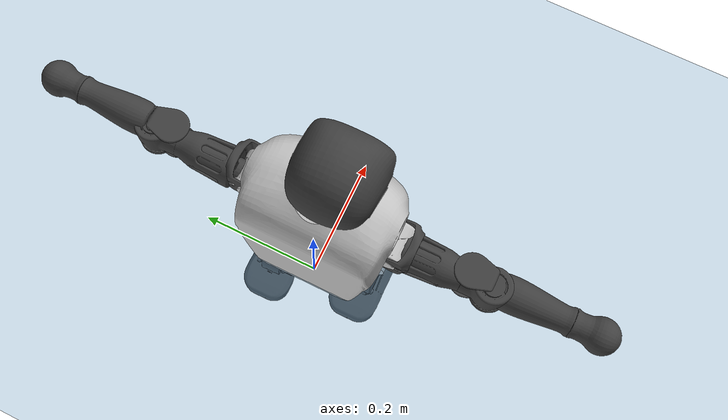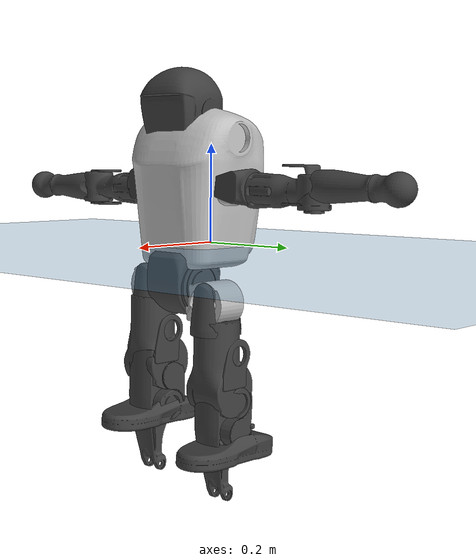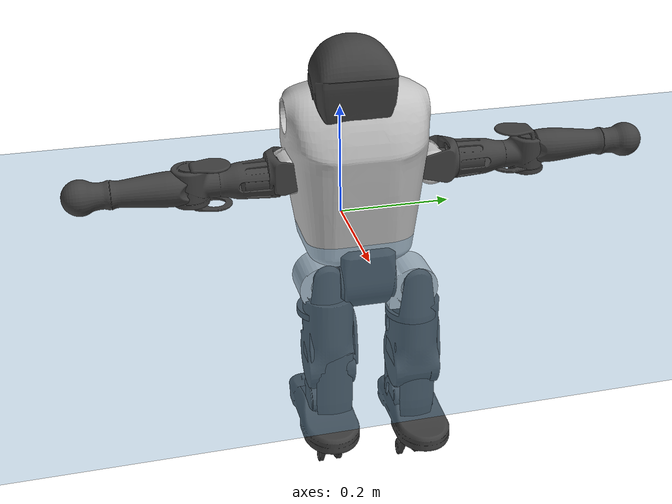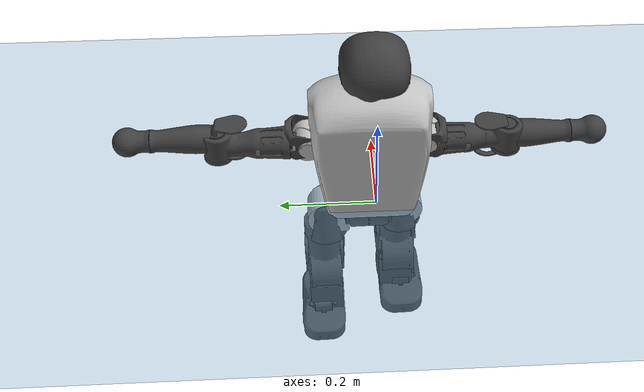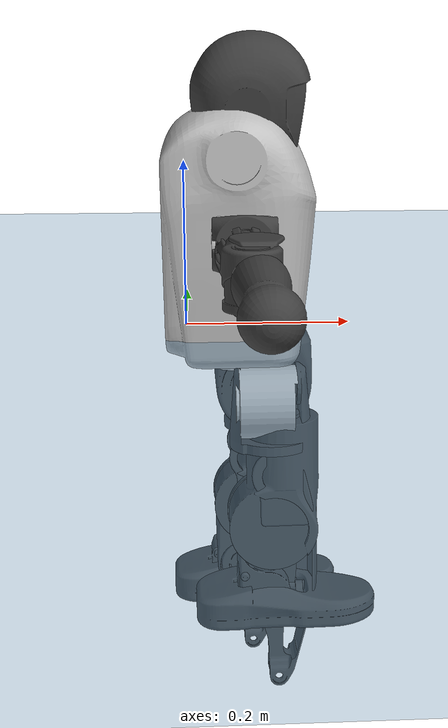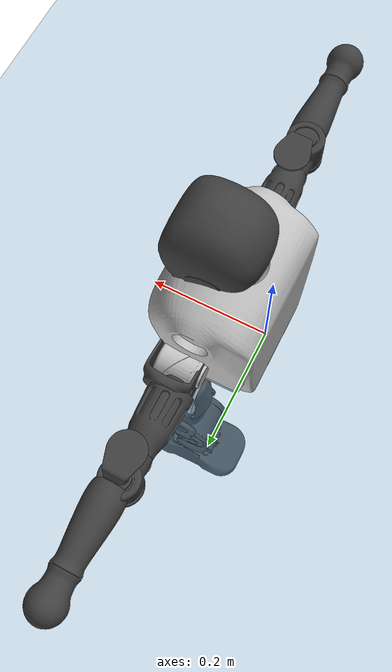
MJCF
<mujoco model="T1">
  <compiler angle="radian" assetdir="assets" balanceinertia="true" inertiafromgeom="false"/>

  <option timestep="0.005" density="1.2" viscosity="2e-05"/>

  <size nkey="1"/>

  <visual>
    <quality shadowsize="8192"/>
    <map shadowclip="0.5"/>
  </visual>

  <default>
    <default class="/">
      <joint armature="0.01" damping="0.01" frictionloss="0.1"/>
      <geom contype="0" conaffinity="0" group="1" solref="-1000 -80"/>
      <site size="0.01 0.005 0.005" group="5"/>
      <general forcelimited="true" biastype="affine" gainprm="25" biasprm="0 -25 -0.6"/>
      <default class="t1">
        <geom rgba="0.25 0.25 0.25 1"/>
        <default class="visual">
          <geom type="mesh" group="2"/>
        </default>
        <default class="collision">
          <geom group="3"/>
        </default>
        <default class="foot">
          <geom size="0.1115 0.05 0.015" type="box" condim="6" group="4" priority="1" solimp="0.015 1 0.015"/>
        </default>
        <default class="reward_collision_sphere">
          <geom group="5" rgba="1 0 0 1"/>
        </default>
      </default>
    </default>
  </default>

  <asset>
    <texture type="skybox" colorspace="auto" name="//unnamed_texture_0" builtin="gradient" rgb1="0.95 0.95 0.95" rgb2="0.95 0.95 0.95" width="100" height="600"/>
    <texture type="2d" colorspace="auto" name="texplane" builtin="checker" rgb1="0.345 0.575 0.748" rgb2="0.345 0.575 0.748" markrgb="1 1 1" width="512" height="512"/>
    <material name="MatPlane" class="/" texture="texplane" texuniform="true" texrepeat="2 2" specular="0.9"/>
    <mesh name="Trunk" class="/" file="Trunk.stl"/>
    <mesh name="H1" class="/" file="H1.stl"/>
    <mesh name="H2" class="/" file="H2.stl"/>
    <mesh name="AL1" class="/" file="AL1.stl"/>
    <mesh name="AL2" class="/" file="AL2.stl"/>
    <mesh name="AL3" class="/" file="AL3.stl"/>
    <mesh name="left_hand_link" class="/" file="left_hand_link.stl"/>
    <mesh name="AR1" class="/" file="AR1.stl"/>
    <mesh name="AR2" class="/" file="AR2.stl"/>
    <mesh name="AR3" class="/" file="AR3.stl"/>
    <mesh name="right_hand_link" class="/" file="right_hand_link.stl"/>
    <mesh name="Waist" class="/" file="Waist.stl"/>
    <mesh name="Hip_Pitch_Left" class="/" file="Hip_Pitch_Left.stl"/>
    <mesh name="Hip_Roll_Left" class="/" file="Hip_Roll_Left.stl"/>
    <mesh name="Hip_Yaw_Left" class="/" file="Hip_Yaw_Left.stl"/>
    <mesh name="Shank_Left" class="/" file="Shank_Left.stl"/>
    <mesh name="Ankle_Cross_Left" class="/" file="Ankle_Cross_Left.stl"/>
    <mesh name="left_foot_link" class="/" file="left_foot_link.stl"/>
    <mesh name="Hip_Pitch_Right" class="/" file="Hip_Pitch_Right.stl"/>
    <mesh name="Hip_Roll_Right" class="/" file="Hip_Roll_Right.stl"/>
    <mesh name="Hip_Yaw_Right" class="/" file="Hip_Yaw_Right.stl"/>
    <mesh name="Shank_Right" class="/" file="Shank_Right.stl"/>
    <mesh name="Ankle_Cross_Right" class="/" file="Ankle_Cross_Right.stl"/>
    <mesh name="right_foot_link" class="/" file="right_foot_link.stl"/>
  </asset>

  <worldbody>
    <geom name="floor" class="/" size="100 100 0.125" type="plane" group="0" material="MatPlane"/>
    <light name="toplight_shadow" class="/" pos="0 0 5" dir="0.0990148 0.0990148 -0.990148" type="directional" ambient="0.04 0.04 0.04" diffuse="0.55 0.55 0.55" specular="0.12 0.12 0.12"/>
    <light name="toplight_fill" class="/" pos="0 0 5" dir="0.0990148 0.0990148 -0.990148" type="directional" castshadow="false" ambient="0.04 0.04 0.04" diffuse="0.3 0.3 0.3" specular="0.08 0.08 0.08"/>
    <body name="trunk" childclass="t1" pos="0.00384777 0.00971918 -0.00802825" quat="0.999987 -0.00410252 -0.00295852 -0.00043092">
      <inertial pos="0.0649064 -0.00305324 0.0538595" quat="0.999957 -0.00314074 -0.00636697 -0.00594635" mass="6.78109" diaginertia="0.202845 0.0172533 0.00197356"/>
      <joint name="//unnamed_joint_0" type="free" armature="0" damping="0" frictionloss="0"/>
      <geom name="//unnamed_geom_1" class="visual" rgba="0.76 0.76 0.76 1" mesh="Trunk"/>
      <geom name="//unnamed_geom_2" class="collision" size="0.0630682 0.0840909 0.126136" pos="0.0734477 0 0.0655259" type="box"/>
      <geom name="//unnamed_geom_3" class="reward_collision_sphere" size="0.0967045" pos="0.0734477 0 0.0546049"/>
      <geom name="//unnamed_geom_4" class="reward_collision_sphere" size="0.0126136" pos="0.0734477 0.0639666 0"/>
      <geom name="//unnamed_geom_5" class="reward_collision_sphere" size="0.0126136" pos="0.0734477 -0.0639666 0"/>
      <geom name="//unnamed_geom_6" class="reward_collision_sphere" size="0.0126136" pos="0.0734477 0.0805226 0.0982889"/>
      <geom name="//unnamed_geom_7" class="reward_collision_sphere" size="0.0126136" pos="0.0734477 -0.0805226 0.0982889"/>
      <site name="imu" pos="-0.0401485 0.0116181 -0.0104424" size="0.00840909"/>
      <camera name="track" pos="0 -1.5051 0" quat="0.707107 0.707107 0 0" mode="trackcom"/>
      <camera name="ego_camera" pos="0.149344 0 0.229341" quat="-0.5 -0.5 0.5 0.5"/>
      <body name="H1" pos="0.0663374 -0.0102965 0.140548" quat="1 -8.28153e-05 0.000168387 -3.17067e-05">
        <inertial pos="0.00798419 -0.00527346 0.0232217" quat="0.784946 0.0283098 -0.0329778 0.618038" mass="0.285657" diaginertia="0.000710595 5.26389e-05 7.86645e-06"/>
        <joint name="AAHead_yaw" pos="0 0 0" axis="0.00586396 0.00111573 0.999982" range="-1.48318 1.74297" armature="0.0124132" damping="0.0070025" frictionloss="0.0301183"/>
        <geom name="//unnamed_geom_8" class="visual" mesh="H1"/>
        <body name="H2" pos="-0.00113721 -0.000157996 0.0271526" quat="1 0.000295732 -0.000595741 -0.000210403">
          <inertial pos="0.0076231 -0.00158318 0.0534846" quat="0.98655 0.108994 -0.0947545 -0.0765607" mass="0.418397" diaginertia="0.00666192 0.000494496 8.08388e-05"/>
          <joint name="Head_pitch" pos="0 0 0" axis="0.0015888 -0.999998 0.000806557" range="-1.24196 0.362595" armature="0.0135709" damping="0" frictionloss="0.0930803"/>
          <geom name="//unnamed_geom_9" class="visual" mesh="H2"/>
          <geom name="//unnamed_geom_10" class="collision" size="0.0672727" pos="0.0122413 0 0.0600654"/>
          <geom name="//unnamed_geom_11" class="reward_collision_sphere" size="0.0756818" pos="0.0244826 0 0.0546049"/>
        </body>
      </body>
      <body name="AL1" pos="0.0716533 0.0795392 0.121246" quat="1 -0.000101271 -0.000140612 -0.000329286">
        <inertial pos="0.00467305 0.0327068 -0.0021702" quat="0.503966 0.485258 -0.549767 0.456398" mass="0.312945" diaginertia="0.00376195 0.000286372 1.22961e-05"/>
        <joint name="Left_Shoulder_Pitch" pos="0 0 0" axis="0.0301431 0.999533 0.00492046" range="-3.2844 1.13696" armature="0.00761925" damping="0.00911323" frictionloss="0.0861787"/>
        <geom name="//unnamed_geom_12" class="visual" rgba="0.76 0.76 0.76 1" mesh="AL1"/>
        <body name="AL2" pos="0.00349385 0.0358414 0.00481296" quat="1 -0.000450238 -0.000615291 -0.000486344">
          <inertial pos="0.00749866 0.0343924 -0.00073891" quat="0.481788 0.51094 -0.49261 0.513962" mass="0.0997717" diaginertia="0.00111356 8.44168e-05 8.87534e-06"/>
          <joint name="Left_Shoulder_Roll" pos="0 0 0" axis="-0.999997 -0.00248428 -0.000124028" range="-1.48497 1.61307" armature="0.00819834" damping="0.00408539" frictionloss="0.0834598"/>
          <geom name="//unnamed_geom_13" class="visual" mesh="AL2"/>
          <body name="AL3" pos="-0.00908341 0.0464624 -0.0054129" quat="0.999992 -0.000847654 0.0019149 -0.00353612">
            <inertial pos="0.0114524 0.0651943 -0.00134665" quat="0.705242 0.708962 -0.00263593 0.000722829" mass="0.545216" diaginertia="0.0329121 0.00348771 3.0308e-05"/>
            <joint name="Left_Elbow_Pitch" pos="0 0 0" axis="0.00303021 -0.999995 0.00134642" range="-2.30923 2.25436" armature="0.010863" damping="0" frictionloss="0.0878392"/>
            <geom name="//unnamed_geom_14" class="visual" mesh="AL3"/>
            <geom name="//unnamed_geom_15" class="collision" size="0.0252273 0.0630682" pos="0 0.0376274 0" quat="0.707105 0.707108 0 0" type="cylinder"/>
            <geom name="//unnamed_geom_16" class="reward_collision_sphere" size="0.0302727"/>
            <body name="left_hand_link" pos="0.00550809 0.112202 0.0126165" quat="0.999986 -0.00518484 0.000341435 -0.000574894">
              <inertial pos="-0.00187485 0.0895639 -0.0069761" quat="0.7259 0.68771 0.00310965 0.0106875" mass="0.226027" diaginertia="0.0225503 0.00219259 1.33091e-05"/>
              <joint name="Left_Elbow_Yaw" pos="0 0 0" axis="0.000272929 0.00111676 0.999999" range="-2.4338 0.072755" armature="0.0083477" damping="0.00536651" frictionloss="0.0772859"/>
              <geom name="//unnamed_geom_17" class="visual" mesh="left_hand_link"/>
              <geom name="//unnamed_geom_18" class="collision" size="0.0252273 0.0735795" pos="0 0.0978312 0" quat="0.707105 0.707108 0 0" type="cylinder"/>
              <geom name="//unnamed_geom_19" class="reward_collision_sphere" size="0.0420454"/>
              <geom name="//unnamed_geom_20" class="reward_collision_sphere" size="0.0294318" pos="0 0.0827803 0"/>
              <geom name="//unnamed_geom_21" class="reward_collision_sphere" size="0.0294318" pos="0 0.161798 0"/>
            </body>
          </body>
        </body>
      </body>
      <body name="AR1" pos="0.0645725 -0.0683683 0.12543" quat="1 -5.76188e-05 0.000660283 0.000177201">
        <inertial pos="0.00125295 -0.024353 -0.0113489" quat="0.504149 0.496785 -0.504669 0.494315" mass="0.340012" diaginertia="0.00408665 0.000381949 1.52429e-05"/>
        <joint name="Right_Shoulder_Pitch" pos="0 0 0" axis="-0.0540455 -0.998536 -0.00243539" range="-1.3946 3.28477" armature="0.0070264" damping="0.00217605" frictionloss="0.0483249"/>
        <geom name="//unnamed_geom_22" class="visual" rgba="0.76 0.76 0.76 1" mesh="AR1"/>
        <body name="AR2" pos="-0.000179506 -0.0296637 0.00143505" quat="0.999995 0.00065229 0.0029845 4.89581e-05">
          <inertial pos="0.0107947 -0.0267655 0.00638727" quat="0.492477 0.498574 -0.506409 0.502434" mass="0.0787404" diaginertia="0.000941001 6.87863e-05 8.3411e-06"/>
          <joint name="Right_Shoulder_Roll" pos="0 0 0" axis="-0.999666 -0.000996552 0.0258257" stiffness="0.0120168" range="-1.70535 1.54206" armature="0.0125427" damping="0" frictionloss="0.0851519"/>
          <geom name="//unnamed_geom_23" class="visual" mesh="AR2"/>
          <body name="AR3" pos="0.000106102 -0.0358029 -0.0104461" quat="0.99999 -0.000973989 -0.000239739 0.00436667">
            <inertial pos="-0.0126816 -0.0633875 -0.0100049" quat="0.71314 0.70102 0.000731183 0.00155125" mass="0.661697" diaginertia="0.0439994 0.00338423 3.43987e-05"/>
            <joint name="Right_Elbow_Pitch" pos="0 0 0" axis="-0.00161126 0.999997 0.00190633" stiffness="0.024015" range="-2.24809 2.23313" armature="0.00908318" damping="0" frictionloss="0.0301953"/>
            <geom name="//unnamed_geom_24" class="visual" mesh="AR3"/>
            <geom name="//unnamed_geom_25" class="collision" size="0.0252273 0.0630682" pos="0 -0.0376274 0" quat="0.707105 0.707108 0 0" type="cylinder"/>
            <geom name="//unnamed_geom_26" class="reward_collision_sphere" size="0.0302727"/>
            <body name="right_hand_link" pos="0.00653255 -0.10859 -0.000189452" quat="1 0.00014714 0.000126524 3.75116e-05">
              <inertial pos="0.000328655 -0.0847217 0.00193493" quat="0.706288 0.707883 -4.98759e-05 0.00774129" mass="0.184048" diaginertia="0.0191698 0.00168181 9.41751e-06"/>
              <joint name="Right_Elbow_Yaw" pos="0 0 0" axis="-0.00427575 -0.060432 0.998163" range="0.051759 2.43539" armature="0.0105448" damping="0.00214459" frictionloss="0.0595153"/>
              <geom name="//unnamed_geom_27" class="visual" mesh="right_hand_link"/>
              <geom name="//unnamed_geom_28" class="collision" size="0.0252273 0.0735795" pos="0 -0.0978312 0" quat="0.707105 0.707108 0 0" type="cylinder"/>
              <geom name="//unnamed_geom_29" class="reward_collision_sphere" size="0.0420454"/>
              <geom name="//unnamed_geom_30" class="reward_collision_sphere" size="0.0294318" pos="0 -0.0827803 0"/>
              <geom name="//unnamed_geom_31" class="reward_collision_sphere" size="0.0294318" pos="0 -0.161798 0"/>
            </body>
          </body>
        </body>
      </body>
      <body name="Waist" pos="0.0893008 0.0044368 -0.068858" quat="0.999983 -0.00222671 -0.000236137 0.00537126">
        <inertial pos="0.0137102 -0.00804612 0.0117002" quat="0.976405 -0.0442142 -0.210705 -0.0167651" mass="1.78875" diaginertia="0.0155125 0.00136179 0.000242535"/>
        <joint name="Waist" pos="0 0 0" axis="0.0320996 -0.00669887 0.999462" range="-1.57076 1.53367" armature="0.0083293" damping="0.0146006" frictionloss="0.0906845"/>
        <geom name="//unnamed_geom_32" class="visual" mesh="Waist"/>
        <body name="Hip_Pitch_Left" pos="0.00285061 0.0879591 -0.00948204" quat="1 0.000305649 0.00082163 -0.000260129">
          <inertial pos="-0.0100203 -0.00411478 -0.00970432" quat="0.962943 0.269556 0.00555586 0.00702141" mass="0.565003" diaginertia="0.00517748 0.000290594 5.78913e-05"/>
          <joint name="Left_Hip_Pitch" pos="0 0 0" axis="0.0290968 0.999099 -0.0308942" range="-1.88116 1.59319" armature="0.00595321" damping="0" frictionloss="0.0890377"/>
          <geom name="//unnamed_geom_33" class="visual" rgba="0.76 0.76 0.76 1" mesh="Hip_Pitch_Left"/>
          <body name="Hip_Roll_Left" pos="0.00431982 0.00465052 -0.00293633" quat="1 0.000171074 -0.0005034 0.000229202">
            <inertial pos="0.00282853 0.0121557 -0.0252173" quat="0.707124 -0.0059259 -0.00596709 0.707039" mass="0.246263" diaginertia="0.00591885 0.000460487 2.31019e-05"/>
            <joint name="Left_Hip_Roll" pos="0 0 0" axis="-0.999724 -0.0201943 0.0119927" range="-1.54618 0.0932157" armature="0.00769917" damping="0.0661444" frictionloss="0.0489368"/>
            <geom name="//unnamed_geom_34" class="visual" mesh="Hip_Roll_Left"/>
            <geom name="//unnamed_geom_35" class="reward_collision_sphere" size="0.04625"/>
            <body name="Hip_Yaw_Left" pos="-0.000104127 0.00494707 -0.0486444" quat="0.999995 -0.0024427 0.00151359 0.00114174">
              <inertial pos="-0.00995418 -0.00255798 -0.041075" quat="0.692667 -0.0351098 -0.0456192 0.718957" mass="1.27421" diaginertia="0.0772328 0.00702249 0.00014321"/>
              <joint name="Left_Hip_Yaw" pos="0 0 0" axis="-0.00648812 0.0115613 -0.999912" stiffness="0.0503229" range="-0.761178 1.00886" armature="0.00789628" damping="0" frictionloss="0.0903132"/>
              <geom name="//unnamed_geom_36" class="visual" mesh="Hip_Yaw_Left"/>
              <geom name="//unnamed_geom_37" class="collision" size="0.0420454 0.0672727" type="cylinder"/>
              <body name="Shank_Left" pos="-0.0156426 0.00259626 -0.0652638" quat="1 0.000276232 0.000467453 -0.000329581">
                <inertial pos="0.0010845 0.0025105 -0.0681465" quat="0.995019 -0.00153717 -0.032951 0.0940667" mass="0.990932" diaginertia="0.0853296 0.00942305 9.83492e-05"/>
                <joint name="Left_Knee_Pitch" pos="0 0 0" axis="-0.0139967 0.999743 0.0178265" range="0.0036467 2.47554" armature="0.00493218" damping="0.0445183" frictionloss="0.0793398"/>
                <geom name="//unnamed_geom_38" class="visual" mesh="Shank_Left"/>
                <geom name="//unnamed_geom_39" class="collision" size="0.0420454 0.0630682" pos="0 0 -0.0655259" type="cylinder"/>
                <geom name="//unnamed_geom_40" class="reward_collision_sphere" size="0.0546591"/>
                <body name="Ankle_Cross_Left" pos="-0.00925211 0.00174635 -0.165837" quat="0.999996 0.00195994 -0.00160472 -0.00133343">
                  <inertial pos="0.00835861 -0.000697546 -0.0102317" quat="0.439729 0.549519 0.556593 0.441442" mass="0.0442452" diaginertia="8.7405e-05 6.27631e-06 5.33792e-07"/>
                  <joint name="Left_Ankle_Pitch" pos="0 0 0" axis="-0.000865301 0.999999 -0.00104149" stiffness="0.0438932" range="-0.891379 0.328836" armature="0.00303571" damping="0" frictionloss="0.0889029"/>
                  <geom name="//unnamed_geom_41" class="visual" mesh="Ankle_Cross_Left"/>
                  <body name="left_foot_link" pos="0.00281192 0.00743633 -0.0139536" quat="0.999979 -0.00357809 -0.00520266 -0.00146142">
                    <inertial pos="0.00802542 0.00568466 -0.00485226" quat="0.0441872 0.63383 0.0229898 0.771867" mass="0.352701" diaginertia="0.00672116 0.000551094 8.7355e-05"/>
                    <joint name="Left_Ankle_Roll" pos="0 0 0" axis="-0.998031 -0.024503 -0.0577425" range="-0.500641 0.30208" armature="0.00911847" damping="0.0477945" frictionloss="0.091069"/>
                    <geom name="//unnamed_geom_42" class="visual" mesh="left_foot_link"/>
                    <geom name="left_foot" class="foot" size="0.0747158 0.058585 0.0121499" pos="0.0122413 0 -0.00819074"/>
                    <geom name="//unnamed_geom_44" class="reward_collision_sphere" size="0.0437273" pos="0.0122413 0 -0.00819074"/>
                    <geom name="//unnamed_geom_45" class="reward_collision_sphere" size="0.0252273" pos="0.116292 -0.0173086 -0.00819074"/>
                    <geom name="//unnamed_geom_46" class="reward_collision_sphere" size="0.0252273" pos="-0.085689 -0.0173086 -0.00819074"/>
                    <site name="left_foot" class="foot" pos="0.0122413 0 -0.00819074" size="0.00840909"/>
                  </body>
                </body>
              </body>
            </body>
          </body>
        </body>
        <body name="Hip_Pitch_Right" pos="0.0011916 -0.0736037 0.0122266" quat="1 -8.87398e-05 7.18461e-05 2.29087e-05">
          <inertial pos="0.0121094 0.0158031 -0.00671146" quat="0.971986 -0.234129 0.0150663 -0.0141392" mass="0.604736" diaginertia="0.0044494 0.000321306 6.15097e-05"/>
          <joint name="Right_Hip_Pitch" pos="0 0 0" axis="-0.0106763 -0.999941 0.00202972" stiffness="0.0158946" range="-1.5337 1.93759" armature="0.00989497" damping="0.0608121" frictionloss="0.0673983"/>
          <geom name="//unnamed_geom_47" class="visual" rgba="0.76 0.76 0.76 1" mesh="Hip_Pitch_Right"/>
          <body name="Hip_Roll_Right" pos="0.00670923 0.0034817 0.00122124" quat="0.999995 -0.00164506 -0.00213288 0.00161398">
            <inertial pos="0.00894708 -0.00342585 -0.0368026" quat="0.67794 0.0190303 -0.0138329 0.73474" mass="0.217964" diaginertia="0.00411937 0.000379286 2.46622e-05"/>
            <joint name="Right_Hip_Roll" pos="0 0 0" axis="-0.999935 -0.0057272 0.00983622" stiffness="0.000692783" range="-0.188619 1.583" armature="0.00828305" damping="0" frictionloss="0.0530567"/>
            <geom name="//unnamed_geom_48" class="visual" mesh="Hip_Roll_Right"/>
            <geom name="//unnamed_geom_49" class="reward_collision_sphere" size="0.04625"/>
            <body name="Hip_Yaw_Right" pos="0.0119256 0.00477665 -0.0415882" quat="1 -0.000576395 -0.000274826 -0.000468572">
              <inertial pos="-0.00821619 0.00196902 -0.0551772" quat="0.711754 -0.038045 -0.0326432 0.700638" mass="1.26441" diaginertia="0.0598746 0.00623412 0.000105702"/>
              <joint name="Right_Hip_Yaw" pos="0 0 0" axis="0.000331042 0.000630248 -1" stiffness="0.00686788" range="-1.04698 0.949537" armature="0.0082447" damping="0" frictionloss="0.0975154"/>
              <geom name="//unnamed_geom_50" class="visual" mesh="Hip_Yaw_Right"/>
              <geom name="//unnamed_geom_51" class="collision" size="0.0420454 0.0672727" type="cylinder"/>
              <body name="Shank_Right" pos="-0.00761932 0.0043881 -0.0656611" quat="0.999999 -0.000988036 -3.22065e-05 -0.00136969">
                <inertial pos="-0.00607963 0.0091853 -0.0689162" quat="0.99849 0.0383366 -0.0148019 -0.0364542" mass="0.919325" diaginertia="0.0992946 0.00830299 0.00010591"/>
                <joint name="Right_Knee_Pitch" pos="0 0 0" axis="-0.00687419 -0.999972 -0.00291023" range="-2.1282 0.0205885" armature="0.00933153" damping="0" frictionloss="0.085077"/>
                <geom name="//unnamed_geom_52" class="visual" mesh="Shank_Right"/>
                <geom name="//unnamed_geom_53" class="collision" size="0.0420454 0.0630682" pos="0 0 -0.0655259" type="cylinder"/>
                <geom name="//unnamed_geom_54" class="reward_collision_sphere" size="0.0546591"/>
                <body name="Ankle_Cross_Right" pos="0.00273779 -0.00155003 -0.149223" quat="1 -0.000463124 -0.000294526 3.06844e-05">
                  <inertial pos="-0.00765299 -0.00531384 -0.00462413" quat="0.442728 0.552586 0.549713 0.443235" mass="0.0476692" diaginertia="7.0417e-05 6.82791e-06 4.86529e-07"/>
                  <joint name="Right_Ankle_Pitch" pos="0 0 0" axis="-0.00579504 -0.998711 0.050432" stiffness="0.0428344" range="-0.481492 1.03396" armature="0.00824861" damping="0" frictionloss="0.090073"/>
                  <geom name="//unnamed_geom_55" class="visual" mesh="Ankle_Cross_Right"/>
                  <body name="right_foot_link" pos="-0.00369374 -0.00950866 -0.0139619" quat="1 -0.000433999 0.000307402 -0.000430955">
                    <inertial pos="-0.000382458 -0.00953886 0.00739821" quat="0.0321977 0.609727 -0.0331416 0.791264" mass="0.500997" diaginertia="0.00864002 0.000680861 0.000141491"/>
                    <joint name="Right_Ankle_Roll" pos="0 0 0" axis="-0.999847 0.0110428 -0.0135523" range="-0.262028 0.216734" armature="0.0137038" damping="0.0671822" frictionloss="0.0518861"/>
                    <geom name="//unnamed_geom_56" class="visual" mesh="right_foot_link"/>
                    <geom name="right_foot" class="foot" size="0.0722672 0.0567532 0.00805797" pos="0.0122413 0 -0.00819074"/>
                    <geom name="//unnamed_geom_58" class="reward_collision_sphere" size="0.0336364"/>
                    <geom name="//unnamed_geom_59" class="reward_collision_sphere" size="0.0252273" pos="0.0122413 0 -0.00819074"/>
                    <geom name="//unnamed_geom_60" class="reward_collision_sphere" size="0.0252273" pos="0.116292 0.0173086 -0.00819074"/>
                    <geom name="//unnamed_geom_61" class="reward_collision_sphere" size="0.0252273" pos="-0.085689 0.0173086 -0.00819074"/>
                    <site name="right_foot" class="foot" pos="0.0122413 0 -0.00819074" size="0.00840909"/>
                  </body>
                </body>
              </body>
            </body>
          </body>
        </body>
      </body>
    </body>
  </worldbody>

  <contact>
    <pair class="/" geom1="floor" geom2="left_foot" name="//unnamed_contact_0"/>
    <pair class="/" geom1="floor" geom2="right_foot" name="//unnamed_contact_1"/>
  </contact>

  <actuator>
    <general name="AAHead_yaw" class="/" joint="AAHead_yaw" forcerange="-5.57853 5.57853" gainprm="23.5258" biasprm="0 -23.5258 -0.433971"/>
    <general name="Head_pitch" class="/" joint="Head_pitch" forcerange="-6.21067 6.21067" gainprm="23.5258" biasprm="0 -23.5258 -0.433971"/>
    <general name="Left_Shoulder_Pitch" class="/" joint="Left_Shoulder_Pitch" forcerange="-22.3812 22.3812" gainprm="23.5258" biasprm="0 -23.5258 -0.433971"/>
    <general name="Left_Shoulder_Roll" class="/" joint="Left_Shoulder_Roll" forcerange="-20.838 20.838" gainprm="23.5258" biasprm="0 -23.5258 -0.433971"/>
    <general name="Left_Elbow_Pitch" class="/" joint="Left_Elbow_Pitch" forcerange="-11.1326 11.1326" gainprm="23.5258" biasprm="0 -23.5258 -0.433971"/>
    <general name="Left_Elbow_Yaw" class="/" joint="Left_Elbow_Yaw" forcerange="-14.4072 14.4072" gainprm="23.5258" biasprm="0 -23.5258 -0.433971"/>
    <general name="Right_Shoulder_Pitch" class="/" joint="Right_Shoulder_Pitch" forcerange="-15.8461 15.8461" gainprm="23.5258" biasprm="0 -23.5258 -0.433971"/>
    <general name="Right_Shoulder_Roll" class="/" joint="Right_Shoulder_Roll" forcerange="-10.7837 10.7837" gainprm="23.5258" biasprm="0 -23.5258 -0.433971"/>
    <general name="Right_Elbow_Pitch" class="/" joint="Right_Elbow_Pitch" forcerange="-14.6543 14.6543" gainprm="23.5258" biasprm="0 -23.5258 -0.433971"/>
    <general name="Right_Elbow_Yaw" class="/" joint="Right_Elbow_Yaw" forcerange="-16.2022 16.2022" gainprm="23.5258" biasprm="0 -23.5258 -0.433971"/>
    <general name="Waist" class="/" joint="Waist" forcerange="-33.9064 33.9064" gainprm="23.5258" biasprm="0 -23.5258 -0.433971"/>
    <general name="Left_Hip_Pitch" class="/" joint="Left_Hip_Pitch" forcerange="-38.0515 38.0515" gainprm="23.5258" biasprm="0 -23.5258 -0.433971"/>
    <general name="Left_Hip_Roll" class="/" joint="Left_Hip_Roll" forcerange="-21.7621 21.7621" gainprm="23.5258" biasprm="0 -23.5258 -0.433971"/>
    <general name="Left_Hip_Yaw" class="/" joint="Left_Hip_Yaw" forcerange="-30.9217 30.9217" gainprm="23.5258" biasprm="0 -23.5258 -0.433971"/>
    <general name="Left_Knee_Pitch" class="/" joint="Left_Knee_Pitch" forcerange="-46.7891 46.7891" gainprm="23.5258" biasprm="0 -23.5258 -0.433971"/>
    <general name="Left_Ankle_Pitch" class="/" joint="Left_Ankle_Pitch" forcerange="-16.4728 16.4728" gainprm="23.5258" biasprm="0 -23.5258 -0.433971"/>
    <general name="Left_Ankle_Roll" class="/" joint="Left_Ankle_Roll" forcerange="-11.1927 11.1927" gainprm="23.5258" biasprm="0 -23.5258 -0.433971"/>
    <general name="Right_Hip_Pitch" class="/" joint="Right_Hip_Pitch" forcerange="-23.3835 23.3835" gainprm="23.5258" biasprm="0 -23.5258 -0.433971"/>
    <general name="Right_Hip_Roll" class="/" joint="Right_Hip_Roll" forcerange="-13.5294 13.5294" gainprm="23.5258" biasprm="0 -23.5258 -0.433971"/>
    <general name="Right_Hip_Yaw" class="/" joint="Right_Hip_Yaw" forcerange="-23.8367 23.8367" gainprm="23.5258" biasprm="0 -23.5258 -0.433971"/>
    <general name="Right_Knee_Pitch" class="/" joint="Right_Knee_Pitch" forcerange="-39.9917 39.9917" gainprm="23.5258" biasprm="0 -23.5258 -0.433971"/>
    <general name="Right_Ankle_Pitch" class="/" joint="Right_Ankle_Pitch" forcerange="-24.4559 24.4559" gainprm="23.5258" biasprm="0 -23.5258 -0.433971"/>
    <general name="Right_Ankle_Roll" class="/" joint="Right_Ankle_Roll" forcerange="-8.44233 8.44233" gainprm="23.5258" biasprm="0 -23.5258 -0.433971"/>
  </actuator>

  <sensor>
    <gyro site="imu" name="imu_angular_velocity"/>
    <velocimeter site="imu" name="imu_linear_velocity"/>
    <framelinvel objtype="site" objname="left_foot" name="left_foot_global_linear_velocity"/>
    <framelinvel objtype="site" objname="right_foot" name="right_foot_global_linear_velocity"/>
  </sensor>

  <keyframe>
    <key name="home" qpos="0 0 0.6385 1 0 0 0 0 0 0 1.4 0 -0.4 0 -1.4 0 0.4 0 -0.4 0 0 0.8 -0.4 0 0.4 0 0 -0.8 0.4 0"/>
  </keyframe>
</mujoco>
